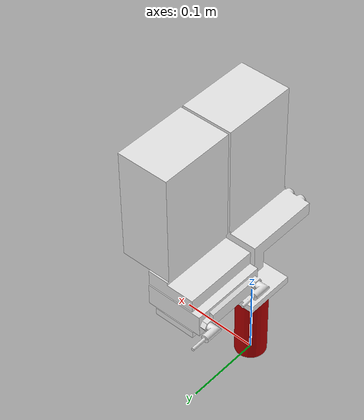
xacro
<?xml version="1.0" ?>
<robot name="za6" xmlns:xacro="http://ros.org/wiki/xacro">
  <xacro:include filename="$(find za6_tools)/urdf/versabuilt_multigrip_macro.xacro"/>
  <xacro:versabuilt_multigrip_macro prefix=""/>

  <material name="main_Red">
    <color rgba="0.7 0.0 0.0 0.99"/>
  </material>

  <link name="world"/>
  <link name="base_link">
    <visual>
      <geometry>
        <cylinder length="0.1" radius="0.02"/>
      </geometry>
      <origin rpy="0 0 0" xyz="0 0 0.05"/>
      <material name="main_Red"/>
    </visual>
  </link>

  <joint name="world-base" type="fixed">
    <parent link="world"/>
    <child link="base_link"/>
  </joint>

  <joint name="base-adapter" type="fixed">
    <parent link="base_link"/>
    <child link="za6_multigrip_adapter"/>
    <origin rpy="0 0 0" xyz="0 0 0.1"/>
  </joint>

</robot>

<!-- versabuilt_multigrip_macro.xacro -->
<robot xmlns:xacro="http://www.ros.org/wiki/xacro">
  <xacro:macro name="versabuilt_multigrip_macro" params="prefix">

    <material name="${prefix}Aluminium">
      <color rgba="0.9 0.9 0.9 0.99"/>
    </material>

    <!-- link list -->
    <link name="${prefix}za6_multigrip_adapter">
    </link>

    <link name="${prefix}multigrip_base_and_fixed_jaw">
      <visual>
        <geometry>
          <mesh filename="package://za6_tools/meshes/versabuilt_multigrip_base_and_fixed_jaw.stl"/>
        </geometry>
        <origin rpy="0.0 0.0 0.0" xyz="0 0 0"/>
        <material name="${prefix}Aluminium">
        </material>
      </visual>
      <collision>
        <geometry>
          <mesh filename="package://za6_tools/meshes/versabuilt_multigrip_base_and_fixed_jaw_collision.stl"/>
        </geometry>
        <origin rpy="0.0 0.0 0.0" xyz="0 0 0"/>
      </collision>
      <inertial>
        <mass value="100"/>
        <inertia ixx="1.0" ixy="0.0" ixz="0.0" iyy="1.0" iyz="0.0" izz="1.0"/>
      </inertial>
    </link>

    <link name="${prefix}multigrip_moving_jaw">
      <visual>
        <geometry>
          <mesh filename="package://za6_tools/meshes/versabuilt_multigrip_moving_jaw.stl"/>
        </geometry>
        <origin rpy="0.0 0.0 0.0" xyz="0 0 0"/>
        <material name="${prefix}Aluminium">
        </material>
      </visual>
      <collision>
        <geometry>
          <mesh filename="package://za6_tools/meshes/versabuilt_multigrip_moving_jaw_collision.stl"/>
        </geometry>
        <origin rpy="0.0 0.0 0.0" xyz="0 0 0"/>
      </collision>
      <inertial>
        <mass value="100"/>
        <inertia ixx="1.0" ixy="0.0" ixz="0.0" iyy="1.0" iyz="0.0" izz="1.0"/>
      </inertial>
    </link>

    <!-- joint list -->
    <joint name="${prefix}adapter-multigrip_base_and_fixed_jaw" type="fixed">
      <parent link="${prefix}za6_multigrip_adapter"/>
      <child link="${prefix}multigrip_base_and_fixed_jaw"/>
      <axis xyz="0 0 1"/>
      <origin xyz="0 0 0" rpy="${pi/2.0} -${pi/2.0} -${pi/2.0}"/>
    </joint>

    <joint name="${prefix}multigrip_base_and_fixed_jaw-multigrip_moving_jaw" type="fixed">
      <parent link="${prefix}multigrip_base_and_fixed_jaw" />
      <child link="${prefix}multigrip_moving_jaw" />
      <axis xyz="0 0 1"/>
      <origin xyz="0.0 0 0.0" rpy="0 0 0" />
    </joint>

  </xacro:macro>
</robot>
